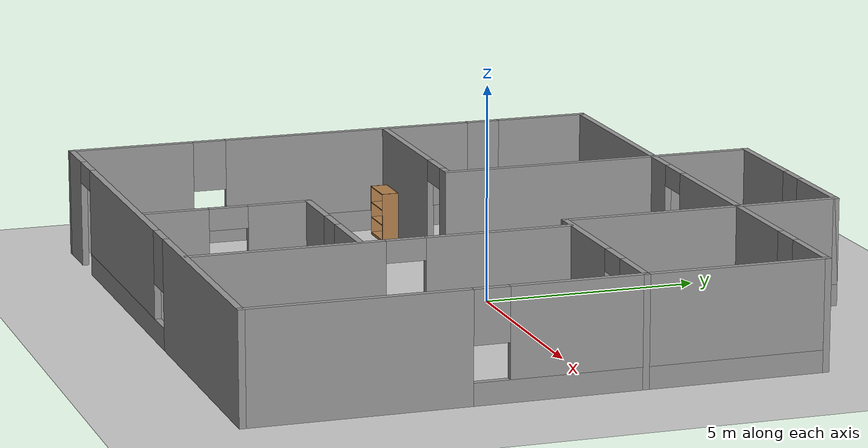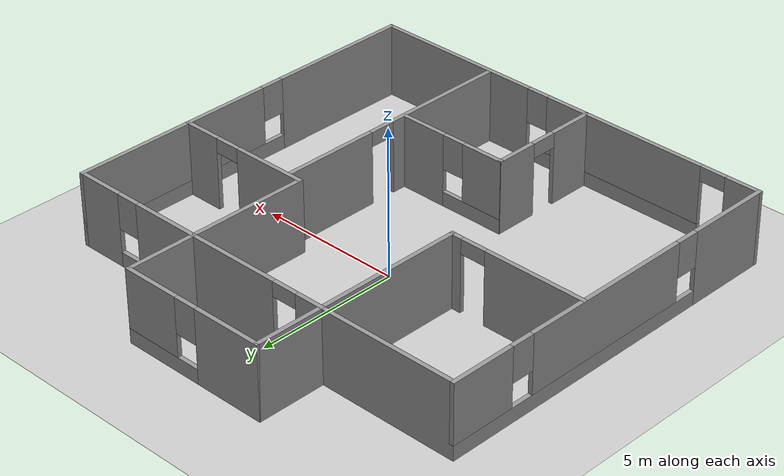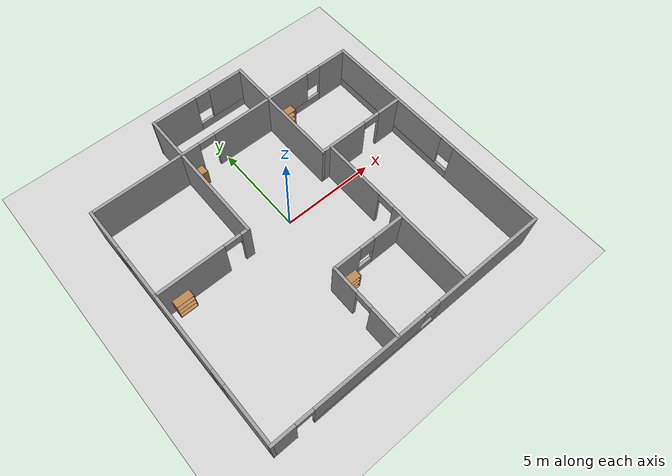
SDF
<sdf version="1.6">
 <world name="default">
  <light name="sun" type="directional">
   <pose>0 0 10 0 -0 0</pose>
   <diffuse>0.8 0.8 0.8 1</diffuse>
   <specular>0.1 0.1 0.1 1</specular>
   <attenuation>
    <range>1000</range>
    <constant>0.9</constant>
    <linear>0.01</linear>
    <quadratic>0.001</quadratic>
   </attenuation>
   <direction>-0.5 0.5 -1</direction>
  </light>
  <model name="ground_plane">
   <static>1</static>
   <link name="link">
    <collision name="collision">
     <geometry><plane><normal>0 0 1</normal><size>100 100</size></plane></geometry>
     <surface><friction><ode><mu>100</mu><mu2>50</mu2></ode></friction></surface>
    </collision>
    <visual name="visual">
     <cast_shadows>0</cast_shadows>
     <geometry><plane><normal>0 0 1</normal><size>100 100</size></plane></geometry>
     <material>
      <script><uri>file://media/materials/scripts/gazebo.material</uri><name>Gazebo/Grey</name></script>
     </material>
    </visual>
   </link>
  </model>
  <gravity>0 0 -9.8</gravity>
  <magnetic_field>6e-06 2.3e-05 -4.2e-05</magnetic_field>
  <atmosphere type="adiabatic"/>
  <physics name="default_physics" default="0" type="ode">
   <max_step_size>0.001</max_step_size>
   <real_time_factor>1</real_time_factor>
   <real_time_update_rate>1000</real_time_update_rate>
  </physics>
  <scene><ambient>0.4 0.4 0.4 1</ambient><background>0.7 0.7 0.7 1</background><shadows>1</shadows></scene>
  <spherical_coordinates>
   <surface_model>EARTH_WGS84</surface_model>
   <latitude_deg>0</latitude_deg>
   <longitude_deg>0</longitude_deg>
   <elevation>0</elevation>
   <heading_deg>0</heading_deg>
  </spherical_coordinates>
  <model name="house_6">
   <pose>0.219242 -0.292953 0 0 -0 0</pose>
   <link name="Wall_11">
    <pose>0 -7.6 0 0 0 -3.14158</pose>
    <visual name="Wall_11_Visual_0">
     <pose>-4.46731 0 1.25 0 -0 0</pose>
     <geometry><box><size>6.06537 0.15 2.5</size></box></geometry>
     <material>
      <script><uri>file://media/materials/scripts/gazebo.material</uri><name>Gazebo/Grey</name></script>
      <ambient>1 1 1 1</ambient>
     </material>
    </visual>
    <collision name="Wall_11_Collision_0">
     <geometry><box><size>6.06537 0.15 2.5</size></box></geometry>
     <pose>-4.46731 0 1.25 0 -0 0</pose>
    </collision>
    <visual name="Wall_11_Visual_1">
     <pose>6.87158 0 1.25 0 -0 0</pose>
     <geometry><box><size>1.25684 0.15 2.5</size></box></geometry>
     <material>
      <script><uri>file://media/materials/scripts/gazebo.material</uri><name>Gazebo/Grey</name></script>
      <ambient>1 1 1 1</ambient>
     </material>
    </visual>
    <collision name="Wall_11_Collision_1">
     <geometry><box><size>1.25684 0.15 2.5</size></box></geometry>
     <pose>6.87158 0 1.25 0 -0 0</pose>
    </collision>
    <visual name="Wall_11_Visual_2">
     <pose>1.95427 0 0.25 0 -0 0</pose>
     <geometry><box><size>6.77779 0.15 0.5</size></box></geometry>
     <material>
      <script><uri>file://media/materials/scripts/gazebo.material</uri><name>Gazebo/Grey</name></script>
      <ambient>1 1 1 1</ambient>
     </material>
    </visual>
    <collision name="Wall_11_Collision_2">
     <geometry><box><size>6.77779 0.15 0.5</size></box></geometry>
     <pose>1.95427 0 0.25 0 -0 0</pose>
    </collision>
    <visual name="Wall_11_Visual_3">
     <pose>2.35427 0 1.5 0 -0 0</pose>
     <geometry><box><size>5.97779 0.15 2</size></box></geometry>
     <material>
      <script><uri>file://media/materials/scripts/gazebo.material</uri><name>Gazebo/Grey</name></script>
      <ambient>1 1 1 1</ambient>
     </material>
    </visual>
    <collision name="Wall_11_Collision_3">
     <geometry><box><size>5.97779 0.15 2</size></box></geometry>
     <pose>2.35427 0 1.5 0 -0 0</pose>
    </collision>
    <visual name="Wall_11_Visual_4">
     <pose>-1.03463 0 1.9 0 -0 0</pose>
     <geometry><box><size>0.8 0.15 1.2</size></box></geometry>
     <material>
      <script><uri>file://media/materials/scripts/gazebo.material</uri><name>Gazebo/Grey</name></script>
      <ambient>1 1 1 1</ambient>
     </material>
    </visual>
    <collision name="Wall_11_Collision_4">
     <geometry><box><size>0.8 0.15 1.2</size></box></geometry>
     <pose>-1.03463 0 1.9 0 -0 0</pose>
    </collision>
    <visual name="Wall_11_Visual_5">
     <pose>5.79316 0 2.25 0 -0 0</pose>
     <geometry><box><size>0.9 0.15 0.5</size></box></geometry>
     <material>
      <script><uri>file://media/materials/scripts/gazebo.material</uri><name>Gazebo/Grey</name></script>
      <ambient>1 1 1 1</ambient>
     </material>
    </visual>
    <collision name="Wall_11_Collision_5">
     <geometry><box><size>0.9 0.15 0.5</size></box></geometry>
     <pose>5.79316 0 2.25 0 -0 0</pose>
    </collision>
   </link>
   <link name="Wall_13">
    <pose>-7.42478 -1.17513 0 0 -0 1.5708</pose>
    <visual name="Wall_13_Visual_0">
     <pose>-4.99341 0 1.25 0 -0 0</pose>
     <geometry><box><size>3.01319 0.15 2.5</size></box></geometry>
     <material>
      <script><uri>file://media/materials/scripts/gazebo.material</uri><name>Gazebo/Grey</name></script>
      <ambient>1 1 1 1</ambient>
     </material>
    </visual>
    <collision name="Wall_13_Collision_0">
     <geometry><box><size>3.01319 0.15 2.5</size></box></geometry>
     <pose>-4.99341 0 1.25 0 -0 0</pose>
    </collision>
    <visual name="Wall_13_Visual_1">
     <pose>1.50659 0 0.25 0 -0 0</pose>
     <geometry><box><size>9.98681 0.15 0.5</size></box></geometry>
     <material>
      <script><uri>file://media/materials/scripts/gazebo.material</uri><name>Gazebo/Grey</name></script>
      <ambient>1 1 1 1</ambient>
     </material>
    </visual>
    <collision name="Wall_13_Collision_1">
     <geometry><box><size>9.98681 0.15 0.5</size></box></geometry>
     <pose>1.50659 0 0.25 0 -0 0</pose>
    </collision>
    <visual name="Wall_13_Visual_2">
     <pose>0.371811 0 1.5 0 -0 0</pose>
     <geometry><box><size>6.11724 0.15 2</size></box></geometry>
     <material>
      <script><uri>file://media/materials/scripts/gazebo.material</uri><name>Gazebo/Grey</name></script>
      <ambient>1 1 1 1</ambient>
     </material>
    </visual>
    <collision name="Wall_13_Collision_2">
     <geometry><box><size>6.11724 0.15 2</size></box></geometry>
     <pose>0.371811 0 1.5 0 -0 0</pose>
    </collision>
    <visual name="Wall_13_Visual_3">
     <pose>5.36522 0 1.5 0 -0 0</pose>
     <geometry><box><size>2.26957 0.15 2</size></box></geometry>
     <material>
      <script><uri>file://media/materials/scripts/gazebo.material</uri><name>Gazebo/Grey</name></script>
      <ambient>1 1 1 1</ambient>
     </material>
    </visual>
    <collision name="Wall_13_Collision_3">
     <geometry><box><size>2.26957 0.15 2</size></box></geometry>
     <pose>5.36522 0 1.5 0 -0 0</pose>
    </collision>
    <visual name="Wall_13_Visual_4">
     <pose>-3.08681 0 1.9 0 -0 0</pose>
     <geometry><box><size>0.8 0.15 1.2</size></box></geometry>
     <material>
      <script><uri>file://media/materials/scripts/gazebo.material</uri><name>Gazebo/Grey</name></script>
      <ambient>1 1 1 1</ambient>
     </material>
    </visual>
    <collision name="Wall_13_Collision_4">
     <geometry><box><size>0.8 0.15 1.2</size></box></geometry>
     <pose>-3.08681 0 1.9 0 -0 0</pose>
    </collision>
    <visual name="Wall_13_Visual_5">
     <pose>3.83043 0 1.9 0 -0 0</pose>
     <geometry><box><size>0.8 0.15 1.2</size></box></geometry>
     <material>
      <script><uri>file://media/materials/scripts/gazebo.material</uri><name>Gazebo/Grey</name></script>
      <ambient>1 1 1 1</ambient>
     </material>
    </visual>
    <collision name="Wall_13_Collision_5">
     <geometry><box><size>0.8 0.15 1.2</size></box></geometry>
     <pose>3.83043 0 1.9 0 -0 0</pose>
    </collision>
   </link>
   <link name="Wall_15">
    <collision name="Wall_15_Collision">
     <geometry><box><size>5 0.15 2.5</size></box></geometry>
     <pose>0 0 1.25 0 -0 0</pose>
    </collision>
    <visual name="Wall_15_Visual">
     <pose>0 0 1.25 0 -0 0</pose>
     <geometry><box><size>5 0.15 2.5</size></box></geometry>
     <material>
      <script><uri>file://media/materials/scripts/gazebo.material</uri><name>Gazebo/Grey</name></script>
      <ambient>1 1 1 1</ambient>
     </material>
    </visual>
    <pose>-4.99978 5.24987 0 0 -0 0</pose>
   </link>
   <link name="Wall_18">
    <pose>4.99978 5.25013 0 0 -0 3.14159</pose>
    <visual name="Wall_18_Visual_0">
     <pose>-1.63952 0 1.25 0 -0 0</pose>
     <geometry><box><size>1.72097 0.15 2.5</size></box></geometry>
     <material>
      <script><uri>file://media/materials/scripts/gazebo.material</uri><name>Gazebo/Grey</name></script>
      <ambient>1 1 1 1</ambient>
     </material>
    </visual>
    <collision name="Wall_18_Collision_0">
     <geometry><box><size>1.72097 0.15 2.5</size></box></geometry>
     <pose>-1.63952 0 1.25 0 -0 0</pose>
    </collision>
    <visual name="Wall_18_Visual_1">
     <pose>0.860483 0 0.25 0 -0 0</pose>
     <geometry><box><size>3.27903 0.15 0.5</size></box></geometry>
     <material>
      <script><uri>file://media/materials/scripts/gazebo.material</uri><name>Gazebo/Grey</name></script>
      <ambient>1 1 1 1</ambient>
     </material>
    </visual>
    <collision name="Wall_18_Collision_1">
     <geometry><box><size>3.27903 0.15 0.5</size></box></geometry>
     <pose>0.860483 0 0.25 0 -0 0</pose>
    </collision>
    <visual name="Wall_18_Visual_2">
     <pose>1.26048 0 1.5 0 -0 0</pose>
     <geometry><box><size>2.47903 0.15 2</size></box></geometry>
     <material>
      <script><uri>file://media/materials/scripts/gazebo.material</uri><name>Gazebo/Grey</name></script>
      <ambient>1 1 1 1</ambient>
     </material>
    </visual>
    <collision name="Wall_18_Collision_2">
     <geometry><box><size>2.47903 0.15 2</size></box></geometry>
     <pose>1.26048 0 1.5 0 -0 0</pose>
    </collision>
    <visual name="Wall_18_Visual_3">
     <pose>-0.379034 0 1.9 0 -0 0</pose>
     <geometry><box><size>0.8 0.15 1.2</size></box></geometry>
     <material>
      <script><uri>file://media/materials/scripts/gazebo.material</uri><name>Gazebo/Grey</name></script>
      <ambient>1 1 1 1</ambient>
     </material>
    </visual>
    <collision name="Wall_18_Collision_3">
     <geometry><box><size>0.8 0.15 1.2</size></box></geometry>
     <pose>-0.379034 0 1.9 0 -0 0</pose>
    </collision>
   </link>
   <link name="Wall_20">
    <collision name="Wall_20_Collision">
     <geometry><box><size>2.5 0.15 2.5</size></box></geometry>
     <pose>0 0 1.25 0 -0 0</pose>
    </collision>
    <visual name="Wall_20_Visual">
     <pose>0 0 1.25 0 -0 0</pose>
     <geometry><box><size>2.5 0.15 2.5</size></box></geometry>
     <material>
      <script><uri>file://media/materials/scripts/gazebo.material</uri><name>Gazebo/Grey</name></script>
      <ambient>1 1 1 1</ambient>
     </material>
    </visual>
    <pose>-2.57478 6.42486 0 0 -0 1.5708</pose>
   </link>
   <link name="Wall_22">
    <collision name="Wall_22_Collision">
     <geometry><box><size>2.5 0.15 2.5</size></box></geometry>
     <pose>0 0 1.25 0 -0 0</pose>
    </collision>
    <visual name="Wall_22_Visual">
     <pose>0 0 1.25 0 -0 0</pose>
     <geometry><box><size>2.5 0.15 2.5</size></box></geometry>
     <material>
      <script><uri>file://media/materials/scripts/gazebo.material</uri><name>Gazebo/Grey</name></script>
      <ambient>1 1 1 1</ambient>
     </material>
    </visual>
    <pose>2.57478 6.42513 0 0 -0 1.5708</pose>
   </link>
   <link name="Wall_24">
    <pose>0 7.6 0 0 -0 5.2e-05</pose>
    <visual name="Wall_24_Visual_0">
     <pose>-1.41792 0 1.25 0 -0 0</pose>
     <geometry><box><size>2.46373 0.15 2.5</size></box></geometry>
     <material>
      <script><uri>file://media/materials/scripts/gazebo.material</uri><name>Gazebo/Grey</name></script>
      <ambient>1 1 1 1</ambient>
     </material>
    </visual>
    <collision name="Wall_24_Collision_0">
     <geometry><box><size>2.46373 0.15 2.5</size></box></geometry>
     <pose>-1.41792 0 1.25 0 -0 0</pose>
    </collision>
    <visual name="Wall_24_Visual_1">
     <pose>1.23186 0 0.25 0 -0 0</pose>
     <geometry><box><size>2.83584 0.15 0.5</size></box></geometry>
     <material>
      <script><uri>file://media/materials/scripts/gazebo.material</uri><name>Gazebo/Grey</name></script>
      <ambient>1 1 1 1</ambient>
     </material>
    </visual>
    <collision name="Wall_24_Collision_1">
     <geometry><box><size>2.83584 0.15 0.5</size></box></geometry>
     <pose>1.23186 0 0.25 0 -0 0</pose>
    </collision>
    <visual name="Wall_24_Visual_2">
     <pose>1.63186 0 1.5 0 -0 0</pose>
     <geometry><box><size>2.03584 0.15 2</size></box></geometry>
     <material>
      <script><uri>file://media/materials/scripts/gazebo.material</uri><name>Gazebo/Grey</name></script>
      <ambient>1 1 1 1</ambient>
     </material>
    </visual>
    <collision name="Wall_24_Collision_2">
     <geometry><box><size>2.03584 0.15 2</size></box></geometry>
     <pose>1.63186 0 1.5 0 -0 0</pose>
    </collision>
    <visual name="Wall_24_Visual_3">
     <pose>0.213941 0 1.9 0 -0 0</pose>
     <geometry><box><size>0.8 0.15 1.2</size></box></geometry>
     <material>
      <script><uri>file://media/materials/scripts/gazebo.material</uri><name>Gazebo/Grey</name></script>
      <ambient>1 1 1 1</ambient>
     </material>
    </visual>
    <collision name="Wall_24_Collision_3">
     <geometry><box><size>0.8 0.15 1.2</size></box></geometry>
     <pose>0.213941 0 1.9 0 -0 0</pose>
    </collision>
   </link>
   <link name="Wall_27">
    <collision name="Wall_27_Collision">
     <geometry><box><size>5.25 0.15 2.5</size></box></geometry>
     <pose>0 0 1.25 0 -0 0</pose>
    </collision>
    <visual name="Wall_27_Visual">
     <pose>0 0 1.25 0 -0 0</pose>
     <geometry><box><size>5.25 0.15 2.5</size></box></geometry>
     <material>
      <script><uri>file://media/materials/scripts/gazebo.material</uri><name>Gazebo/Grey</name></script>
      <ambient>1 1 1 1</ambient>
     </material>
    </visual>
    <pose>-2.57478 2.69987 0 0 -0 1.5708</pose>
   </link>
   <link name="Wall_29">
    <pose>0 5.25 0 0 -0 5.2e-05</pose>
    <visual name="Wall_29_Visual_0">
     <pose>-2.13607 0 1.25 0 -0 0</pose>
     <geometry><box><size>1.02743 0.15 2.5</size></box></geometry>
     <material>
      <script><uri>file://media/materials/scripts/gazebo.material</uri><name>Gazebo/Grey</name></script>
      <ambient>1 1 1 1</ambient>
     </material>
    </visual>
    <collision name="Wall_29_Collision_0">
     <geometry><box><size>1.02743 0.15 2.5</size></box></geometry>
     <pose>-2.13607 0 1.25 0 -0 0</pose>
    </collision>
    <visual name="Wall_29_Visual_1">
     <pose>0.963715 0 1.25 0 -0 0</pose>
     <geometry><box><size>3.37214 0.15 2.5</size></box></geometry>
     <material>
      <script><uri>file://media/materials/scripts/gazebo.material</uri><name>Gazebo/Grey</name></script>
      <ambient>1 1 1 1</ambient>
     </material>
    </visual>
    <collision name="Wall_29_Collision_1">
     <geometry><box><size>3.37214 0.15 2.5</size></box></geometry>
     <pose>0.963715 0 1.25 0 -0 0</pose>
    </collision>
    <visual name="Wall_29_Visual_2">
     <pose>-1.17235 0 2.25 0 -0 0</pose>
     <geometry><box><size>0.9 0.15 0.5</size></box></geometry>
     <material>
      <script><uri>file://media/materials/scripts/gazebo.material</uri><name>Gazebo/Grey</name></script>
      <ambient>1 1 1 1</ambient>
     </material>
    </visual>
    <collision name="Wall_29_Collision_2">
     <geometry><box><size>0.9 0.15 0.5</size></box></geometry>
     <pose>-1.17235 0 2.25 0 -0 0</pose>
    </collision>
   </link>
   <link name="Wall_31">
    <collision name="Wall_31_Collision">
     <geometry><box><size>4.25 0.15 2.5</size></box></geometry>
     <pose>0 0 1.25 0 -0 0</pose>
    </collision>
    <visual name="Wall_31_Visual">
     <pose>0 0 1.25 0 -0 0</pose>
     <geometry><box><size>4.25 0.15 2.5</size></box></geometry>
     <material>
      <script><uri>file://media/materials/scripts/gazebo.material</uri><name>Gazebo/Grey</name></script>
      <ambient>1 1 1 1</ambient>
     </material>
    </visual>
    <pose>2.57478 3.20013 0 0 0 -1.5708</pose>
   </link>
   <link name="Wall_32">
    <pose>4.99978 1.15013 0 0 -0 0</pose>
    <visual name="Wall_32_Visual_0">
     <pose>-1.14869 0 1.25 0 -0 0</pose>
     <geometry><box><size>2.70261 0.15 2.5</size></box></geometry>
     <material>
      <script><uri>file://media/materials/scripts/gazebo.material</uri><name>Gazebo/Grey</name></script>
      <ambient>1 1 1 1</ambient>
     </material>
    </visual>
    <collision name="Wall_32_Collision_0">
     <geometry><box><size>2.70261 0.15 2.5</size></box></geometry>
     <pose>-1.14869 0 1.25 0 -0 0</pose>
    </collision>
    <visual name="Wall_32_Visual_1">
     <pose>1.80131 0 1.25 0 -0 0</pose>
     <geometry><box><size>1.39739 0.15 2.5</size></box></geometry>
     <material>
      <script><uri>file://media/materials/scripts/gazebo.material</uri><name>Gazebo/Grey</name></script>
      <ambient>1 1 1 1</ambient>
     </material>
    </visual>
    <collision name="Wall_32_Collision_1">
     <geometry><box><size>1.39739 0.15 2.5</size></box></geometry>
     <pose>1.80131 0 1.25 0 -0 0</pose>
    </collision>
    <visual name="Wall_32_Visual_2">
     <pose>0.652614 0 2.25 0 -0 0</pose>
     <geometry><box><size>0.9 0.15 0.5</size></box></geometry>
     <material>
      <script><uri>file://media/materials/scripts/gazebo.material</uri><name>Gazebo/Grey</name></script>
      <ambient>1 1 1 1</ambient>
     </material>
    </visual>
    <collision name="Wall_32_Collision_2">
     <geometry><box><size>0.9 0.15 0.5</size></box></geometry>
     <pose>0.652614 0 2.25 0 -0 0</pose>
    </collision>
   </link>
   <link name="Wall_34">
    <pose>3.05435 -3.23388 0 0 0 -1.5708</pose>
    <visual name="Wall_34_Visual_0">
     <pose>-2.67738 0 1.25 0 -0 0</pose>
     <geometry><box><size>3.39523 0.15 2.5</size></box></geometry>
     <material>
      <script><uri>file://media/materials/scripts/gazebo.material</uri><name>Gazebo/Grey</name></script>
      <ambient>1 1 1 1</ambient>
     </material>
    </visual>
    <collision name="Wall_34_Collision_0">
     <geometry><box><size>3.39523 0.15 2.5</size></box></geometry>
     <pose>-2.67738 0 1.25 0 -0 0</pose>
    </collision>
    <visual name="Wall_34_Visual_1">
     <pose>2.14762 0 1.25 0 -0 0</pose>
     <geometry><box><size>4.45477 0.15 2.5</size></box></geometry>
     <material>
      <script><uri>file://media/materials/scripts/gazebo.material</uri><name>Gazebo/Grey</name></script>
      <ambient>1 1 1 1</ambient>
     </material>
    </visual>
    <collision name="Wall_34_Collision_1">
     <geometry><box><size>4.45477 0.15 2.5</size></box></geometry>
     <pose>2.14762 0 1.25 0 -0 0</pose>
    </collision>
    <visual name="Wall_34_Visual_2">
     <pose>-0.529768 0 2.25 0 -0 0</pose>
     <geometry><box><size>0.9 0.15 0.5</size></box></geometry>
     <material>
      <script><uri>file://media/materials/scripts/gazebo.material</uri><name>Gazebo/Grey</name></script>
      <ambient>1 1 1 1</ambient>
     </material>
    </visual>
    <collision name="Wall_34_Collision_2">
     <geometry><box><size>0.9 0.15 0.5</size></box></geometry>
     <pose>-0.529768 0 2.25 0 -0 0</pose>
    </collision>
   </link>
   <link name="Wall_39">
    <pose>-0.902977 -5.63844 0 0 0 -1.5708</pose>
    <visual name="Wall_39_Visual_0">
     <pose>-1.25651 0 1.25 0 -0 0</pose>
     <geometry><box><size>1.48697 0.15 2.5</size></box></geometry>
     <material>
      <script><uri>file://media/materials/scripts/gazebo.material</uri><name>Gazebo/Grey</name></script>
      <ambient>1 1 1 1</ambient>
     </material>
    </visual>
    <collision name="Wall_39_Collision_0">
     <geometry><box><size>1.48697 0.15 2.5</size></box></geometry>
     <pose>-1.25651 0 1.25 0 -0 0</pose>
    </collision>
    <visual name="Wall_39_Visual_1">
     <pose>1.19349 0 1.25 0 -0 0</pose>
     <geometry><box><size>1.61302 0.15 2.5</size></box></geometry>
     <material>
      <script><uri>file://media/materials/scripts/gazebo.material</uri><name>Gazebo/Grey</name></script>
      <ambient>1 1 1 1</ambient>
     </material>
    </visual>
    <collision name="Wall_39_Collision_1">
     <geometry><box><size>1.61302 0.15 2.5</size></box></geometry>
     <pose>1.19349 0 1.25 0 -0 0</pose>
    </collision>
    <visual name="Wall_39_Visual_2">
     <pose>-0.063025 0 2.25 0 -0 0</pose>
     <geometry><box><size>0.9 0.15 0.5</size></box></geometry>
     <material>
      <script><uri>file://media/materials/scripts/gazebo.material</uri><name>Gazebo/Grey</name></script>
      <ambient>1 1 1 1</ambient>
     </material>
    </visual>
    <collision name="Wall_39_Collision_2">
     <geometry><box><size>0.9 0.15 0.5</size></box></geometry>
     <pose>-0.063025 0 2.25 0 -0 0</pose>
    </collision>
   </link>
   <link name="Wall_43">
    <pose>1.03571 -3.70282 0 0 -0 3.14159</pose>
    <visual name="Wall_43_Visual_0">
     <pose>-1.15803 0 1.25 0 -0 0</pose>
     <geometry><box><size>1.68393 0.15 2.5</size></box></geometry>
     <material>
      <script><uri>file://media/materials/scripts/gazebo.material</uri><name>Gazebo/Grey</name></script>
      <ambient>1 1 1 1</ambient>
     </material>
    </visual>
    <collision name="Wall_43_Collision_0">
     <geometry><box><size>1.68393 0.15 2.5</size></box></geometry>
     <pose>-1.15803 0 1.25 0 -0 0</pose>
    </collision>
    <visual name="Wall_43_Visual_1">
     <pose>0.841966 0 0.25 0 -0 0</pose>
     <geometry><box><size>2.31607 0.15 0.5</size></box></geometry>
     <material>
      <script><uri>file://media/materials/scripts/gazebo.material</uri><name>Gazebo/Grey</name></script>
      <ambient>1 1 1 1</ambient>
     </material>
    </visual>
    <collision name="Wall_43_Collision_1">
     <geometry><box><size>2.31607 0.15 0.5</size></box></geometry>
     <pose>0.841966 0 0.25 0 -0 0</pose>
    </collision>
    <visual name="Wall_43_Visual_2">
     <pose>1.24197 0 1.5 0 -0 0</pose>
     <geometry><box><size>1.51607 0.15 2</size></box></geometry>
     <material>
      <script><uri>file://media/materials/scripts/gazebo.material</uri><name>Gazebo/Grey</name></script>
      <ambient>1 1 1 1</ambient>
     </material>
    </visual>
    <collision name="Wall_43_Collision_2">
     <geometry><box><size>1.51607 0.15 2</size></box></geometry>
     <pose>1.24197 0 1.5 0 -0 0</pose>
    </collision>
    <visual name="Wall_43_Visual_3">
     <pose>0.083931 0 1.9 0 -0 0</pose>
     <geometry><box><size>0.8 0.15 1.2</size></box></geometry>
     <material>
      <script><uri>file://media/materials/scripts/gazebo.material</uri><name>Gazebo/Grey</name></script>
      <ambient>1 1 1 1</ambient>
     </material>
    </visual>
    <collision name="Wall_43_Collision_3">
     <geometry><box><size>0.8 0.15 1.2</size></box></geometry>
     <pose>0.083931 0 1.9 0 -0 0</pose>
    </collision>
   </link>
   <link name="Wall_45">
    <pose>-4.99978 0.149865 0 0 -0 3.14159</pose>
    <visual name="Wall_45_Visual_0">
     <pose>-2.26528 0 1.25 0 -0 0</pose>
     <geometry><box><size>0.469444 0.15 2.5</size></box></geometry>
     <material>
      <script><uri>file://media/materials/scripts/gazebo.material</uri><name>Gazebo/Grey</name></script>
      <ambient>1 1 1 1</ambient>
     </material>
    </visual>
    <collision name="Wall_45_Collision_0">
     <geometry><box><size>0.469444 0.15 2.5</size></box></geometry>
     <pose>-2.26528 0 1.25 0 -0 0</pose>
    </collision>
    <visual name="Wall_45_Visual_1">
     <pose>0.684722 0 1.25 0 -0 0</pose>
     <geometry><box><size>3.63056 0.15 2.5</size></box></geometry>
     <material>
      <script><uri>file://media/materials/scripts/gazebo.material</uri><name>Gazebo/Grey</name></script>
      <ambient>1 1 1 1</ambient>
     </material>
    </visual>
    <collision name="Wall_45_Collision_1">
     <geometry><box><size>3.63056 0.15 2.5</size></box></geometry>
     <pose>0.684722 0 1.25 0 -0 0</pose>
    </collision>
    <visual name="Wall_45_Visual_2">
     <pose>-1.58056 0 2.25 0 -0 0</pose>
     <geometry><box><size>0.9 0.15 0.5</size></box></geometry>
     <material>
      <script><uri>file://media/materials/scripts/gazebo.material</uri><name>Gazebo/Grey</name></script>
      <ambient>1 1 1 1</ambient>
     </material>
    </visual>
    <collision name="Wall_45_Collision_2">
     <geometry><box><size>0.9 0.15 0.5</size></box></geometry>
     <pose>-1.58056 0 2.25 0 -0 0</pose>
    </collision>
   </link>
   <link name="Wall_8">
    <pose>7.42478 -1.17487 0 0 -0 1.5708</pose>
    <visual name="Wall_8_Visual_0">
     <pose>-3.99169 0 1.25 0 -0 0</pose>
     <geometry><box><size>5.01661 0.15 2.5</size></box></geometry>
     <material>
      <script><uri>file://media/materials/scripts/gazebo.material</uri><name>Gazebo/Grey</name></script>
      <ambient>1 1 1 1</ambient>
     </material>
    </visual>
    <collision name="Wall_8_Collision_0">
     <geometry><box><size>5.01661 0.15 2.5</size></box></geometry>
     <pose>-3.99169 0 1.25 0 -0 0</pose>
    </collision>
    <visual name="Wall_8_Visual_1">
     <pose>2.50831 0 0.25 0 -0 0</pose>
     <geometry><box><size>7.98339 0.15 0.5</size></box></geometry>
     <material>
      <script><uri>file://media/materials/scripts/gazebo.material</uri><name>Gazebo/Grey</name></script>
      <ambient>1 1 1 1</ambient>
     </material>
    </visual>
    <collision name="Wall_8_Collision_1">
     <geometry><box><size>7.98339 0.15 0.5</size></box></geometry>
     <pose>2.50831 0 0.25 0 -0 0</pose>
    </collision>
    <visual name="Wall_8_Visual_2">
     <pose>2.9083 0 1.5 0 -0 0</pose>
     <geometry><box><size>7.18339 0.15 2</size></box></geometry>
     <material>
      <script><uri>file://media/materials/scripts/gazebo.material</uri><name>Gazebo/Grey</name></script>
      <ambient>1 1 1 1</ambient>
     </material>
    </visual>
    <collision name="Wall_8_Collision_2">
     <geometry><box><size>7.18339 0.15 2</size></box></geometry>
     <pose>2.9083 0 1.5 0 -0 0</pose>
    </collision>
    <visual name="Wall_8_Visual_3">
     <pose>-1.08339 0 1.9 0 -0 0</pose>
     <geometry><box><size>0.8 0.15 1.2</size></box></geometry>
     <material>
      <script><uri>file://media/materials/scripts/gazebo.material</uri><name>Gazebo/Grey</name></script>
      <ambient>1 1 1 1</ambient>
     </material>
    </visual>
    <collision name="Wall_8_Collision_3">
     <geometry><box><size>0.8 0.15 1.2</size></box></geometry>
     <pose>-1.08339 0 1.9 0 -0 0</pose>
    </collision>
   </link>
   <static>1</static>
  </model>
  <model name="bookshelf">
   <static>1</static>
   <link name="link">
    <inertial><mass>1</mass></inertial>
    <collision name="back">
     <pose>0 0.005 0.6 0 -0 0</pose>
     <geometry><box><size>0.9 0.01 1.2</size></box></geometry>
    </collision>
    <visual name="visual1">
     <pose>0 0.005 0.6 0 -0 0</pose>
     <geometry><box><size>0.9 0.01 1.2</size></box></geometry>
     <material>
      <script><uri>file://media/materials/scripts/gazebo.material</uri><name>Gazebo/Wood</name></script>
     </material>
    </visual>
    <collision name="left_side">
     <pose>0.45 -0.195 0.6 0 -0 0</pose>
     <geometry><box><size>0.02 0.4 1.2</size></box></geometry>
    </collision>
    <visual name="visual2">
     <pose>0.45 -0.195 0.6 0 -0 0</pose>
     <geometry><box><size>0.02 0.4 1.2</size></box></geometry>
     <material>
      <script><uri>file://media/materials/scripts/gazebo.material</uri><name>Gazebo/Wood</name></script>
     </material>
    </visual>
    <collision name="right_side">
     <pose>-0.45 -0.195 0.6 0 -0 0</pose>
     <geometry><box><size>0.02 0.4 1.2</size></box></geometry>
    </collision>
    <visual name="visual3">
     <pose>-0.45 -0.195 0.6 0 -0 0</pose>
     <geometry><box><size>0.02 0.4 1.2</size></box></geometry>
     <material>
      <script><uri>file://media/materials/scripts/gazebo.material</uri><name>Gazebo/Wood</name></script>
     </material>
    </visual>
    <collision name="bottom">
     <pose>0 -0.195 0.03 0 -0 0</pose>
     <geometry><box><size>0.88 0.4 0.06</size></box></geometry>
    </collision>
    <visual name="visual4">
     <pose>0 -0.195 0.03 0 -0 0</pose>
     <geometry><box><size>0.88 0.4 0.06</size></box></geometry>
     <material>
      <script><uri>file://media/materials/scripts/gazebo.material</uri><name>Gazebo/Wood</name></script>
     </material>
    </visual>
    <collision name="top">
     <pose>0 -0.195 1.19 0 -0 0</pose>
     <geometry><box><size>0.88 0.4 0.02</size></box></geometry>
    </collision>
    <visual name="visual5">
     <pose>0 -0.195 1.19 0 -0 0</pose>
     <geometry><box><size>0.88 0.4 0.02</size></box></geometry>
     <material>
      <script><uri>file://media/materials/scripts/gazebo.material</uri><name>Gazebo/Wood</name></script>
     </material>
    </visual>
    <collision name="low_shelf">
     <pose>0 -0.195 0.43 0 -0 0</pose>
     <geometry><box><size>0.88 0.4 0.02</size></box></geometry>
    </collision>
    <visual name="visual6">
     <pose>0 -0.195 0.43 0 -0 0</pose>
     <geometry><box><size>0.88 0.4 0.02</size></box></geometry>
     <material>
      <script><uri>file://media/materials/scripts/gazebo.material</uri><name>Gazebo/Wood</name></script>
     </material>
    </visual>
    <collision name="high_shelf">
     <pose>0 -0.195 0.8 0 -0 0</pose>
     <geometry><box><size>0.88 0.4 0.02</size></box></geometry>
    </collision>
    <visual name="visual7">
     <pose>0 -0.195 0.8 0 -0 0</pose>
     <geometry><box><size>0.88 0.4 0.02</size></box></geometry>
     <material>
      <script><uri>file://media/materials/scripts/gazebo.material</uri><name>Gazebo/Wood</name></script>
     </material>
    </visual>
   </link>
   <pose>-6.28295 -0.243654 0 0 -0 0</pose>
  </model>
  <model name="cabinet">
   <static>1</static>
   <link name="cabinet_bottom_plate">
    <inertial>
     <pose>0 0 -1 0 -0 0</pose>
     <inertia><ixx>2.05</ixx><ixy>0</ixy><ixz>0</ixz><iyy>2.05</iyy><iyz>0</iyz><izz>2.05</izz></inertia>
     <mass>25</mass>
    </inertial>
    <collision name="cabinet_bottom_plate_geom">
     <pose>0 0 0.01 0 -0 0</pose>
     <geometry><box><size>0.45 0.45 0.02</size></box></geometry>
    </collision>
    <visual name="cabinet_bottom_plate_geom_visual">
     <pose>0 0 0.01 0 -0 0</pose>
     <geometry><box><size>0.45 0.45 0.02</size></box></geometry>
     <material>
      <script><uri>file://media/materials/scripts/gazebo.material</uri><name>Gazebo/Wood</name></script>
     </material>
    </visual>
    <collision name="cabinet_bottom_plate_geom_cabinet_back_plate">
     <pose>0.235 0 0.51 0 -0 0</pose>
     <geometry><box><size>0.02 0.45 1.02</size></box></geometry>
    </collision>
    <visual name="cabinet_bottom_plate_geom_cabinet_back_plate_visual">
     <pose>0.235 0 0.51 0 -0 0</pose>
     <geometry><box><size>0.02 0.45 1.02</size></box></geometry>
     <material>
      <script><uri>file://media/materials/scripts/gazebo.material</uri><name>Gazebo/Wood</name></script>
     </material>
    </visual>
    <collision name="cabinet_bottom_plate_geom_cabinet_left_plate">
     <pose>0 0.235 0.51 0 -0 0</pose>
     <geometry><box><size>0.45 0.02 1.02</size></box></geometry>
    </collision>
    <visual name="cabinet_bottom_plate_geom_cabinet_left_plate_visual">
     <pose>0 0.235 0.51 0 -0 0</pose>
     <geometry><box><size>0.45 0.02 1.02</size></box></geometry>
     <material>
      <script><uri>file://media/materials/scripts/gazebo.material</uri><name>Gazebo/Wood</name></script>
     </material>
    </visual>
    <collision name="cabinet_bottom_plate_geom_cabinet_middle_plate">
     <pose>0 0 0.51 0 -0 0</pose>
     <geometry><box><size>0.45 0.45 0.02</size></box></geometry>
    </collision>
    <visual name="cabinet_bottom_plate_geom_cabinet_middle_plate_visual">
     <pose>0 0 0.51 0 -0 0</pose>
     <geometry><box><size>0.45 0.45 0.02</size></box></geometry>
     <material>
      <script><uri>file://media/materials/scripts/gazebo.material</uri><name>Gazebo/Wood</name></script>
     </material>
    </visual>
    <collision name="cabinet_bottom_plate_geom_cabinet_right_plate">
     <pose>0 -0.235 0.51 0 -0 0</pose>
     <geometry><box><size>0.45 0.02 1.02</size></box></geometry>
    </collision>
    <visual name="cabinet_bottom_plate_geom_cabinet_right_plate_visual">
     <pose>0 -0.235 0.51 0 -0 0</pose>
     <geometry><box><size>0.45 0.02 1.02</size></box></geometry>
     <material>
      <script><uri>file://media/materials/scripts/gazebo.material</uri><name>Gazebo/Wood</name></script>
     </material>
    </visual>
    <collision name="cabinet_bottom_plate_geom_cabinet_top_plate">
     <pose>0 0 1.01 0 -0 0</pose>
     <geometry><box><size>0.45 0.45 0.02</size></box></geometry>
    </collision>
    <visual name="cabinet_bottom_plate_geom_cabinet_top_plate_visual">
     <pose>0 0 1.01 0 -0 0</pose>
     <geometry><box><size>0.45 0.45 0.02</size></box></geometry>
     <material>
      <script><uri>file://media/materials/scripts/gazebo.material</uri><name>Gazebo/Wood</name></script>
     </material>
    </visual>
   </link>
   <pose>-1.80285 4.58105 0 0 -0 0</pose>
  </model>
  <model name="bookshelf_0">
   <static>1</static>
   <link name="link">
    <inertial><mass>1</mass></inertial>
    <collision name="back">
     <pose>0 0.005 0.6 0 -0 0</pose>
     <geometry><box><size>0.9 0.01 1.2</size></box></geometry>
    </collision>
    <visual name="visual1">
     <pose>0 0.005 0.6 0 -0 0</pose>
     <geometry><box><size>0.9 0.01 1.2</size></box></geometry>
     <material>
      <script><uri>file://media/materials/scripts/gazebo.material</uri><name>Gazebo/Wood</name></script>
     </material>
    </visual>
    <collision name="left_side">
     <pose>0.45 -0.195 0.6 0 -0 0</pose>
     <geometry><box><size>0.02 0.4 1.2</size></box></geometry>
    </collision>
    <visual name="visual2">
     <pose>0.45 -0.195 0.6 0 -0 0</pose>
     <geometry><box><size>0.02 0.4 1.2</size></box></geometry>
     <material>
      <script><uri>file://media/materials/scripts/gazebo.material</uri><name>Gazebo/Wood</name></script>
     </material>
    </visual>
    <collision name="right_side">
     <pose>-0.45 -0.195 0.6 0 -0 0</pose>
     <geometry><box><size>0.02 0.4 1.2</size></box></geometry>
    </collision>
    <visual name="visual3">
     <pose>-0.45 -0.195 0.6 0 -0 0</pose>
     <geometry><box><size>0.02 0.4 1.2</size></box></geometry>
     <material>
      <script><uri>file://media/materials/scripts/gazebo.material</uri><name>Gazebo/Wood</name></script>
     </material>
    </visual>
    <collision name="bottom">
     <pose>0 -0.195 0.03 0 -0 0</pose>
     <geometry><box><size>0.88 0.4 0.06</size></box></geometry>
    </collision>
    <visual name="visual4">
     <pose>0 -0.195 0.03 0 -0 0</pose>
     <geometry><box><size>0.88 0.4 0.06</size></box></geometry>
     <material>
      <script><uri>file://media/materials/scripts/gazebo.material</uri><name>Gazebo/Wood</name></script>
     </material>
    </visual>
    <collision name="top">
     <pose>0 -0.195 1.19 0 -0 0</pose>
     <geometry><box><size>0.88 0.4 0.02</size></box></geometry>
    </collision>
    <visual name="visual5">
     <pose>0 -0.195 1.19 0 -0 0</pose>
     <geometry><box><size>0.88 0.4 0.02</size></box></geometry>
     <material>
      <script><uri>file://media/materials/scripts/gazebo.material</uri><name>Gazebo/Wood</name></script>
     </material>
    </visual>
    <collision name="low_shelf">
     <pose>0 -0.195 0.43 0 -0 0</pose>
     <geometry><box><size>0.88 0.4 0.02</size></box></geometry>
    </collision>
    <visual name="visual6">
     <pose>0 -0.195 0.43 0 -0 0</pose>
     <geometry><box><size>0.88 0.4 0.02</size></box></geometry>
     <material>
      <script><uri>file://media/materials/scripts/gazebo.material</uri><name>Gazebo/Wood</name></script>
     </material>
    </visual>
    <collision name="high_shelf">
     <pose>0 -0.195 0.8 0 -0 0</pose>
     <geometry><box><size>0.88 0.4 0.02</size></box></geometry>
    </collision>
    <visual name="visual7">
     <pose>0 -0.195 0.8 0 -0 0</pose>
     <geometry><box><size>0.88 0.4 0.02</size></box></geometry>
     <material>
      <script><uri>file://media/materials/scripts/gazebo.material</uri><name>Gazebo/Wood</name></script>
     </material>
    </visual>
   </link>
   <pose>-0.061462 -4.22729 0 0 -0 0</pose>
  </model>
  <model name="bookshelf_1">
   <static>1</static>
   <link name="link">
    <inertial><mass>1</mass></inertial>
    <collision name="back">
     <pose>0 0.005 0.6 0 -0 0</pose>
     <geometry><box><size>0.9 0.01 1.2</size></box></geometry>
    </collision>
    <visual name="visual1">
     <pose>0 0.005 0.6 0 -0 0</pose>
     <geometry><box><size>0.9 0.01 1.2</size></box></geometry>
     <material>
      <script><uri>file://media/materials/scripts/gazebo.material</uri><name>Gazebo/Wood</name></script>
     </material>
    </visual>
    <collision name="left_side">
     <pose>0.45 -0.195 0.6 0 -0 0</pose>
     <geometry><box><size>0.02 0.4 1.2</size></box></geometry>
    </collision>
    <visual name="visual2">
     <pose>0.45 -0.195 0.6 0 -0 0</pose>
     <geometry><box><size>0.02 0.4 1.2</size></box></geometry>
     <material>
      <script><uri>file://media/materials/scripts/gazebo.material</uri><name>Gazebo/Wood</name></script>
     </material>
    </visual>
    <collision name="right_side">
     <pose>-0.45 -0.195 0.6 0 -0 0</pose>
     <geometry><box><size>0.02 0.4 1.2</size></box></geometry>
    </collision>
    <visual name="visual3">
     <pose>-0.45 -0.195 0.6 0 -0 0</pose>
     <geometry><box><size>0.02 0.4 1.2</size></box></geometry>
     <material>
      <script><uri>file://media/materials/scripts/gazebo.material</uri><name>Gazebo/Wood</name></script>
     </material>
    </visual>
    <collision name="bottom">
     <pose>0 -0.195 0.03 0 -0 0</pose>
     <geometry><box><size>0.88 0.4 0.06</size></box></geometry>
    </collision>
    <visual name="visual4">
     <pose>0 -0.195 0.03 0 -0 0</pose>
     <geometry><box><size>0.88 0.4 0.06</size></box></geometry>
     <material>
      <script><uri>file://media/materials/scripts/gazebo.material</uri><name>Gazebo/Wood</name></script>
     </material>
    </visual>
    <collision name="top">
     <pose>0 -0.195 1.19 0 -0 0</pose>
     <geometry><box><size>0.88 0.4 0.02</size></box></geometry>
    </collision>
    <visual name="visual5">
     <pose>0 -0.195 1.19 0 -0 0</pose>
     <geometry><box><size>0.88 0.4 0.02</size></box></geometry>
     <material>
      <script><uri>file://media/materials/scripts/gazebo.material</uri><name>Gazebo/Wood</name></script>
     </material>
    </visual>
    <collision name="low_shelf">
     <pose>0 -0.195 0.43 0 -0 0</pose>
     <geometry><box><size>0.88 0.4 0.02</size></box></geometry>
    </collision>
    <visual name="visual6">
     <pose>0 -0.195 0.43 0 -0 0</pose>
     <geometry><box><size>0.88 0.4 0.02</size></box></geometry>
     <material>
      <script><uri>file://media/materials/scripts/gazebo.material</uri><name>Gazebo/Wood</name></script>
     </material>
    </visual>
    <collision name="high_shelf">
     <pose>0 -0.195 0.8 0 -0 0</pose>
     <geometry><box><size>0.88 0.4 0.02</size></box></geometry>
    </collision>
    <visual name="visual7">
     <pose>0 -0.195 0.8 0 -0 0</pose>
     <geometry><box><size>0.88 0.4 0.02</size></box></geometry>
     <material>
      <script><uri>file://media/materials/scripts/gazebo.material</uri><name>Gazebo/Wood</name></script>
     </material>
    </visual>
   </link>
   <pose>3.54171 4.76973 0 0 -0 0</pose>
  </model>
 </world>
</sdf>
